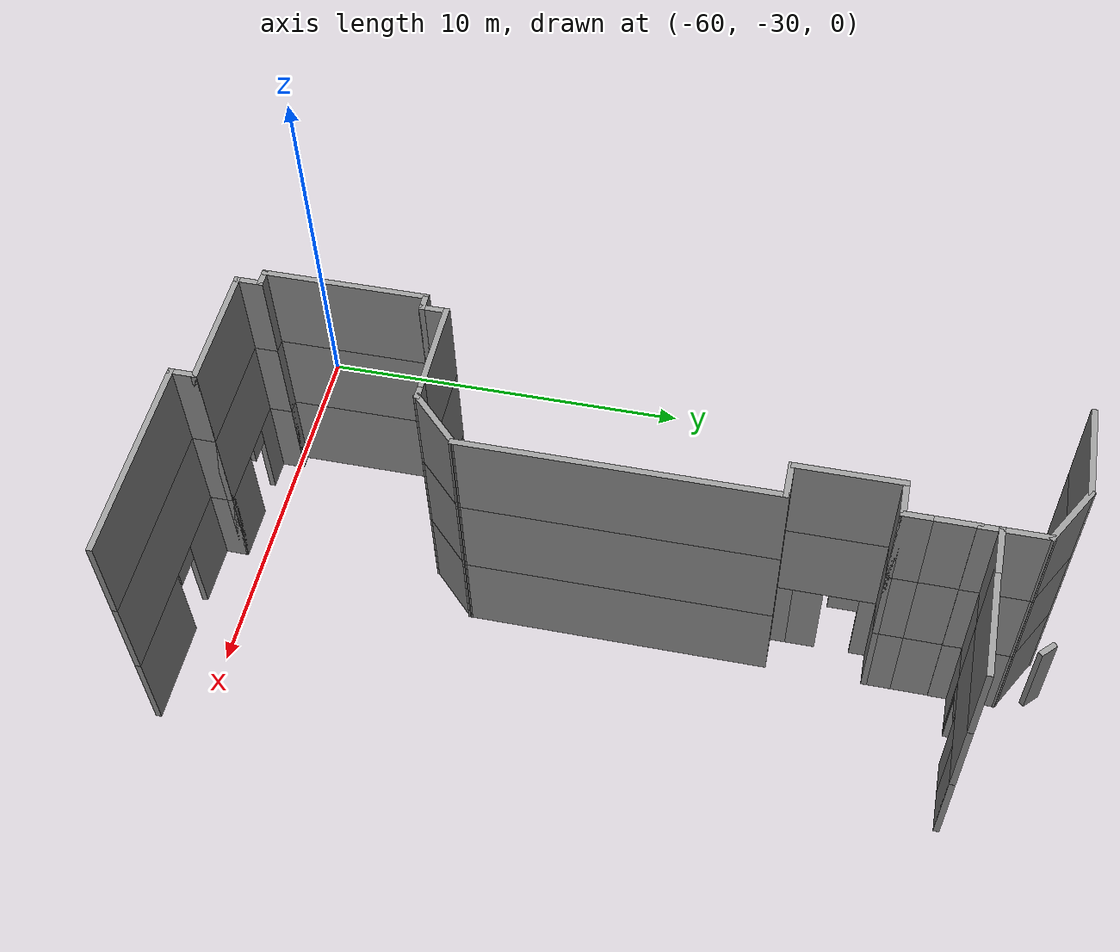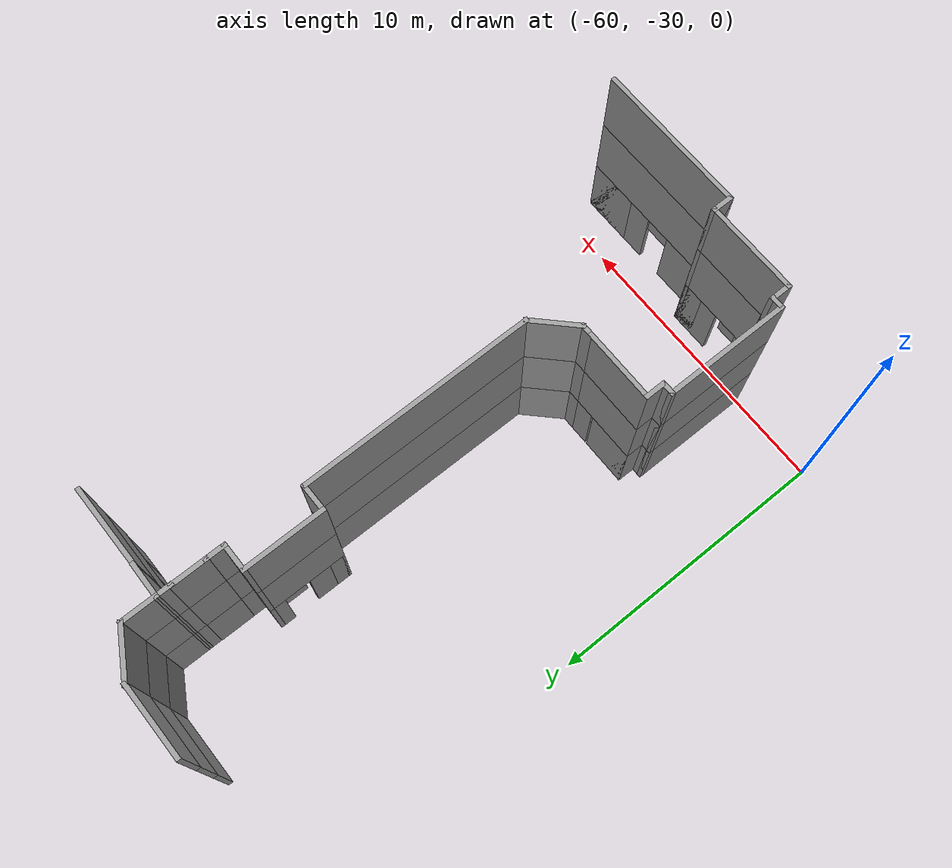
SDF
<sdf version="1.7">
 <model name="mapagazebo">
  <pose>-4.67869 9.01252 0 0 -0 0</pose>
  <link name="Wall_1429">
   <collision name="Wall_1429_Collision">
    <geometry><box><size>1.25 0.15 2.5</size></box></geometry>
    <pose>0 0 1.25 0 -0 0</pose>
   </collision>
   <visual name="Wall_1429_Visual">
    <pose>0 0 1.25 0 -0 0</pose>
    <geometry><box><size>1.25 0.15 2.5</size></box></geometry>
    <material>
     <script><uri>file://media/materials/scripts/gazebo.material</uri><name>Gazebo/Grey</name></script>
     <ambient>1 1 1 1</ambient>
    </material>
    <meta><layer>2</layer></meta>
   </visual>
   <pose>-47.8392 -20.1161 5 0 -0 -1.5708</pose>
  </link>
  <link name="Wall_1430">
   <collision name="Wall_1430_Collision">
    <geometry><box><size>1.22701 0.15 2.5</size></box></geometry>
    <pose>0 0 1.25 0 -0 0</pose>
   </collision>
   <visual name="Wall_1430_Visual">
    <pose>0 0 1.25 0 -0 0</pose>
    <geometry><box><size>1.22701 0.15 2.5</size></box></geometry>
    <material>
     <script><uri>file://media/materials/scripts/gazebo.material</uri><name>Gazebo/Grey</name></script>
     <ambient>1 1 1 1</ambient>
    </material>
    <meta><layer>2</layer></meta>
   </visual>
   <pose>-47.3008 -20.6724 5 0 -0 -0.011706</pose>
  </link>
  <link name="Wall_1431">
   <collision name="Wall_1431_Collision">
    <geometry><box><size>2.75 0.15 2.5</size></box></geometry>
    <pose>0 0 1.25 0 -0 0</pose>
   </collision>
   <visual name="Wall_1431_Visual">
    <pose>0 0 1.25 0 -0 0</pose>
    <geometry><box><size>2.75 0.15 2.5</size></box></geometry>
    <material>
     <script><uri>file://media/materials/scripts/gazebo.material</uri><name>Gazebo/Grey</name></script>
     <ambient>1 1 1 1</ambient>
    </material>
    <meta><layer>2</layer></meta>
   </visual>
   <pose>-45.4623 -20.6913 5 0 -0 0</pose>
  </link>
  <link name="Wall_1434">
   <collision name="Wall_1434_Collision">
    <geometry><box><size>0.626337 0.15 2.5</size></box></geometry>
    <pose>0 0 1.25 0 -0 0</pose>
   </collision>
   <visual name="Wall_1434_Visual">
    <pose>0 0 1.25 0 -0 0</pose>
    <geometry><box><size>0.626337 0.15 2.5</size></box></geometry>
    <material>
     <script><uri>file://media/materials/scripts/gazebo.material</uri><name>Gazebo/Grey</name></script>
     <ambient>1 1 1 1</ambient>
    </material>
    <meta><layer>2</layer></meta>
   </visual>
   <pose>-47.8374 -20.9043 5 0 -0 -1.563</pose>
  </link>
  <link name="Wall_1435">
   <collision name="Wall_1435_Collision">
    <geometry><box><size>1.25 0.15 2.5</size></box></geometry>
    <pose>0 0 1.25 0 -0 0</pose>
   </collision>
   <visual name="Wall_1435_Visual">
    <pose>0 0 1.25 0 -0 0</pose>
    <geometry><box><size>1.25 0.15 2.5</size></box></geometry>
    <material>
     <script><uri>file://media/materials/scripts/gazebo.material</uri><name>Gazebo/Grey</name></script>
     <ambient>1 1 1 1</ambient>
    </material>
    <meta><layer>2</layer></meta>
   </visual>
   <pose>-47.8481 -21.6924 5 0 -0 -1.5708</pose>
  </link>
  <link name="Wall_1436">
   <collision name="Wall_1436_Collision">
    <geometry><box><size>0.75 0.15 2.5</size></box></geometry>
    <pose>0 0 1.25 0 -0 0</pose>
   </collision>
   <visual name="Wall_1436_Visual">
    <pose>0 0 1.25 0 -0 0</pose>
    <geometry><box><size>0.75 0.15 2.5</size></box></geometry>
    <material>
     <script><uri>file://media/materials/scripts/gazebo.material</uri><name>Gazebo/Grey</name></script>
     <ambient>1 1 1 1</ambient>
    </material>
    <meta><layer>2</layer></meta>
   </visual>
   <pose>-47.8481 -22.5424 5 0 -0 -1.5708</pose>
  </link>
  <link name="Wall_1437">
   <collision name="Wall_1437_Collision">
    <geometry><box><size>1 0.15 2.5</size></box></geometry>
    <pose>0 0 1.25 0 -0 0</pose>
   </collision>
   <visual name="Wall_1437_Visual">
    <pose>0 0 1.25 0 -0 0</pose>
    <geometry><box><size>1 0.15 2.5</size></box></geometry>
    <material>
     <script><uri>file://media/materials/scripts/gazebo.material</uri><name>Gazebo/Grey</name></script>
     <ambient>1 1 1 1</ambient>
    </material>
    <meta><layer>2</layer></meta>
   </visual>
   <pose>-48.2731 -22.8424 5 0 -0 3.14159</pose>
  </link>
  <link name="Wall_1438">
   <collision name="Wall_1438_Collision">
    <geometry><box><size>2.75 0.15 2.5</size></box></geometry>
    <pose>0 0 1.25 0 -0 0</pose>
   </collision>
   <visual name="Wall_1438_Visual">
    <pose>0 0 1.25 0 -0 0</pose>
    <geometry><box><size>2.75 0.15 2.5</size></box></geometry>
    <material>
     <script><uri>file://media/materials/scripts/gazebo.material</uri><name>Gazebo/Grey</name></script>
     <ambient>1 1 1 1</ambient>
    </material>
    <meta><layer>2</layer></meta>
   </visual>
   <pose>-48.6981 -24.1424 5 0 -0 -1.5708</pose>
  </link>
  <link name="Wall_1439">
   <collision name="Wall_1439_Collision">
    <geometry><box><size>1 0.15 2.5</size></box></geometry>
    <pose>0 0 1.25 0 -0 0</pose>
   </collision>
   <visual name="Wall_1439_Visual">
    <pose>0 0 1.25 0 -0 0</pose>
    <geometry><box><size>1 0.15 2.5</size></box></geometry>
    <material>
     <script><uri>file://media/materials/scripts/gazebo.material</uri><name>Gazebo/Grey</name></script>
     <ambient>1 1 1 1</ambient>
    </material>
    <meta><layer>2</layer></meta>
   </visual>
   <pose>-48.2731 -25.4424 5 0 -0 0</pose>
  </link>
  <link name="Wall_1440">
   <collision name="Wall_1440_Collision">
    <geometry><box><size>7.8365 0.15 2.5</size></box></geometry>
    <pose>0 0 1.25 0 -0 0</pose>
   </collision>
   <visual name="Wall_1440_Visual">
    <pose>0 0 1.25 0 -0 0</pose>
    <geometry><box><size>7.8365 0.15 2.5</size></box></geometry>
    <material>
     <script><uri>file://media/materials/scripts/gazebo.material</uri><name>Gazebo/Grey</name></script>
     <ambient>1 1 1 1</ambient>
    </material>
    <meta><layer>2</layer></meta>
   </visual>
   <pose>-47.8481 -29.2857 5 0 -0 -1.5708</pose>
  </link>
  <link name="Wall_1441">
   <collision name="Wall_1441_Collision">
    <geometry><box><size>1.75 0.15 2.5</size></box></geometry>
    <pose>0 0 1.25 0 -0 0</pose>
   </collision>
   <visual name="Wall_1441_Visual">
    <pose>0 0 1.25 0 -0 0</pose>
    <geometry><box><size>1.75 0.15 2.5</size></box></geometry>
    <material>
     <script><uri>file://media/materials/scripts/gazebo.material</uri><name>Gazebo/Grey</name></script>
     <ambient>1 1 1 1</ambient>
    </material>
    <meta><layer>2</layer></meta>
   </visual>
   <pose>-48.4138 -33.6946 5 0 -0 -2.35619</pose>
  </link>
  <link name="Wall_1442">
   <collision name="Wall_1442_Collision">
    <geometry><box><size>0.5 0.15 2.5</size></box></geometry>
    <pose>0 0 1.25 0 -0 0</pose>
   </collision>
   <visual name="Wall_1442_Visual">
    <pose>0 0 1.25 0 -0 0</pose>
    <geometry><box><size>0.5 0.15 2.5</size></box></geometry>
    <material>
     <script><uri>file://media/materials/scripts/gazebo.material</uri><name>Gazebo/Grey</name></script>
     <ambient>1 1 1 1</ambient>
    </material>
    <meta><layer>2</layer></meta>
   </visual>
   <pose>-49.1545 -34.2603 5 0 -0 3.14159</pose>
  </link>
  <link name="Wall_1443">
   <collision name="Wall_1443_Collision">
    <geometry><box><size>2.5 0.15 2.5</size></box></geometry>
    <pose>0 0 1.25 0 -0 0</pose>
   </collision>
   <visual name="Wall_1443_Visual">
    <pose>0 0 1.25 0 -0 0</pose>
    <geometry><box><size>2.5 0.15 2.5</size></box></geometry>
    <material>
     <script><uri>file://media/materials/scripts/gazebo.material</uri><name>Gazebo/Grey</name></script>
     <ambient>1 1 1 1</ambient>
    </material>
    <meta><layer>2</layer></meta>
   </visual>
   <pose>-50.5045 -34.2603 5 0 -0 3.14159</pose>
  </link>
  <link name="Wall_1444">
   <collision name="Wall_1444_Collision">
    <geometry><box><size>0.75 0.15 2.5</size></box></geometry>
    <pose>0 0 1.25 0 -0 0</pose>
   </collision>
   <visual name="Wall_1444_Visual">
    <pose>0 0 1.25 0 -0 0</pose>
    <geometry><box><size>0.75 0.15 2.5</size></box></geometry>
    <material>
     <script><uri>file://media/materials/scripts/gazebo.material</uri><name>Gazebo/Grey</name></script>
     <ambient>1 1 1 1</ambient>
    </material>
    <meta><layer>2</layer></meta>
   </visual>
   <pose>-51.6795 -34.5603 5 0 -0 -1.5708</pose>
  </link>
  <link name="Wall_1445">
   <collision name="Wall_1445_Collision">
    <geometry><box><size>0.5 0.15 2.5</size></box></geometry>
    <pose>0 0 1.25 0 -0 0</pose>
   </collision>
   <visual name="Wall_1445_Visual">
    <pose>0 0 1.25 0 -0 0</pose>
    <geometry><box><size>0.5 0.15 2.5</size></box></geometry>
    <material>
     <script><uri>file://media/materials/scripts/gazebo.material</uri><name>Gazebo/Grey</name></script>
     <ambient>1 1 1 1</ambient>
    </material>
    <meta><layer>2</layer></meta>
   </visual>
   <pose>-51.8545 -34.8603 5 0 -0 3.14159</pose>
  </link>
  <link name="Wall_1446">
   <collision name="Wall_1446_Collision">
    <geometry><box><size>4.25 0.15 2.5</size></box></geometry>
    <pose>0 0 1.25 0 -0 0</pose>
   </collision>
   <visual name="Wall_1446_Visual">
    <pose>0 0 1.25 0 -0 0</pose>
    <geometry><box><size>4.25 0.15 2.5</size></box></geometry>
    <material>
     <script><uri>file://media/materials/scripts/gazebo.material</uri><name>Gazebo/Grey</name></script>
     <ambient>1 1 1 1</ambient>
    </material>
    <meta><layer>2</layer></meta>
   </visual>
   <pose>-52.0295 -36.9103 5 0 -0 -1.5708</pose>
  </link>
  <link name="Wall_1447">
   <collision name="Wall_1447_Collision">
    <geometry><box><size>0.5 0.15 2.5</size></box></geometry>
    <pose>0 0 1.25 0 -0 0</pose>
   </collision>
   <visual name="Wall_1447_Visual">
    <pose>0 0 1.25 0 -0 0</pose>
    <geometry><box><size>0.5 0.15 2.5</size></box></geometry>
    <material>
     <script><uri>file://media/materials/scripts/gazebo.material</uri><name>Gazebo/Grey</name></script>
     <ambient>1 1 1 1</ambient>
    </material>
    <meta><layer>2</layer></meta>
   </visual>
   <pose>-51.8545 -38.9603 5 0 -0 0</pose>
  </link>
  <link name="Wall_1448">
   <collision name="Wall_1448_Collision">
    <geometry><box><size>0.75 0.15 2.5</size></box></geometry>
    <pose>0 0 1.25 0 -0 0</pose>
   </collision>
   <visual name="Wall_1448_Visual">
    <pose>0 0 1.25 0 -0 0</pose>
    <geometry><box><size>0.75 0.15 2.5</size></box></geometry>
    <material>
     <script><uri>file://media/materials/scripts/gazebo.material</uri><name>Gazebo/Grey</name></script>
     <ambient>1 1 1 1</ambient>
    </material>
    <meta><layer>2</layer></meta>
   </visual>
   <pose>-51.6795 -39.2603 5 0 -0 -1.5708</pose>
  </link>
  <link name="Wall_1449">
   <collision name="Wall_1449_Collision">
    <geometry><box><size>3.25 0.15 2.5</size></box></geometry>
    <pose>0 0 1.25 0 -0 0</pose>
   </collision>
   <visual name="Wall_1449_Visual">
    <pose>0 0 1.25 0 -0 0</pose>
    <geometry><box><size>3.25 0.15 2.5</size></box></geometry>
    <material>
     <script><uri>file://media/materials/scripts/gazebo.material</uri><name>Gazebo/Grey</name></script>
     <ambient>1 1 1 1</ambient>
    </material>
    <meta><layer>2</layer></meta>
   </visual>
   <pose>-50.1295 -39.5603 5 0 -0 0</pose>
  </link>
  <link name="Wall_1450">
   <collision name="Wall_1450_Collision">
    <geometry><box><size>0.75 0.15 2.5</size></box></geometry>
    <pose>0 0 1.25 0 -0 0</pose>
   </collision>
   <visual name="Wall_1450_Visual">
    <pose>0 0 1.25 0 -0 0</pose>
    <geometry><box><size>0.75 0.15 2.5</size></box></geometry>
    <material>
     <script><uri>file://media/materials/scripts/gazebo.material</uri><name>Gazebo/Grey</name></script>
     <ambient>1 1 1 1</ambient>
    </material>
    <meta><layer>2</layer></meta>
   </visual>
   <pose>-48.5795 -39.8603 5 0 -0 -1.5708</pose>
  </link>
  <link name="Wall_1451">
   <collision name="Wall_1451_Collision">
    <geometry><box><size>5.25 0.15 2.5</size></box></geometry>
    <pose>0 0 1.25 0 -0 0</pose>
   </collision>
   <visual name="Wall_1451_Visual">
    <pose>0 0 1.25 0 -0 0</pose>
    <geometry><box><size>5.25 0.15 2.5</size></box></geometry>
    <material>
     <script><uri>file://media/materials/scripts/gazebo.material</uri><name>Gazebo/Grey</name></script>
     <ambient>1 1 1 1</ambient>
    </material>
    <meta><layer>2</layer></meta>
   </visual>
   <pose>-46.0295 -40.1603 5 0 -0 0</pose>
  </link>
  <link name="Wall_1460">
   <collision name="Wall_1460_Collision">
    <geometry><box><size>1.75 0.15 2.5</size></box></geometry>
    <pose>0 0 1.25 0 -0 0</pose>
   </collision>
   <visual name="Wall_1460_Visual">
    <pose>0 0 1.25 0 -0 0</pose>
    <geometry><box><size>1.75 0.15 2.5</size></box></geometry>
    <material>
     <script><uri>file://media/materials/scripts/gazebo.material</uri><name>Gazebo/Grey</name></script>
     <ambient>1 1 1 1</ambient>
    </material>
    <meta><layer>2</layer></meta>
   </visual>
   <pose>-48.5321 -19.1661 5 0 -0 2.61799</pose>
  </link>
  <link name="Wall_1461">
   <collision name="Wall_1461_Collision">
    <geometry><box><size>2.5 0.15 2.5</size></box></geometry>
    <pose>0 0 1.25 0 -0 0</pose>
   </collision>
   <visual name="Wall_1461_Visual">
    <pose>0 0 1.25 0 -0 0</pose>
    <geometry><box><size>2.5 0.15 2.5</size></box></geometry>
    <material>
     <script><uri>file://media/materials/scripts/gazebo.material</uri><name>Gazebo/Grey</name></script>
     <ambient>1 1 1 1</ambient>
    </material>
    <meta><layer>2</layer></meta>
   </visual>
   <pose>-50.3999 -18.7661 5 0 -0 3.14159</pose>
  </link>
  <link name="Wall_2167">
   <collision name="Wall_2167_Collision">
    <geometry><box><size>0.5 0.15 2.5</size></box></geometry>
    <pose>0 0 1.25 0 -0 0</pose>
   </collision>
   <visual name="Wall_2167_Visual">
    <pose>0 0 1.25 0 -0 0</pose>
    <geometry><box><size>0.5 0.15 2.5</size></box></geometry>
    <material>
     <script><uri>file://media/materials/scripts/gazebo.material</uri><name>Gazebo/Grey</name></script>
     <ambient>1 1 1 1</ambient>
    </material>
    <meta><layer>0</layer></meta>
   </visual>
   <pose>-48.1469 -18.689 0 0 -0 2.35619</pose>
  </link>
  <link name="Wall_42">
   <collision name="Wall_42_Collision">
    <geometry><box><size>1.25 0.15 2.5</size></box></geometry>
    <pose>0 0 1.25 0 -0 0</pose>
   </collision>
   <visual name="Wall_42_Visual">
    <pose>0 0 1.25 0 -0 0</pose>
    <geometry><box><size>1.25 0.15 2.5</size></box></geometry>
    <material>
     <script><uri>file://media/materials/scripts/gazebo.material</uri><name>Gazebo/Grey</name></script>
     <ambient>1 1 1 1</ambient>
    </material>
    <meta><layer>0</layer></meta>
   </visual>
   <pose>-47.8392 -20.1161 0 0 -0 -1.5708</pose>
  </link>
  <link name="Wall_43">
   <collision name="Wall_43_Collision">
    <geometry><box><size>1.22701 0.15 2.5</size></box></geometry>
    <pose>0 0 1.25 0 -0 0</pose>
   </collision>
   <visual name="Wall_43_Visual">
    <pose>0 0 1.25 0 -0 0</pose>
    <geometry><box><size>1.22701 0.15 2.5</size></box></geometry>
    <material>
     <script><uri>file://media/materials/scripts/gazebo.material</uri><name>Gazebo/Grey</name></script>
     <ambient>1 1 1 1</ambient>
    </material>
    <meta><layer>0</layer></meta>
   </visual>
   <pose>-47.3008 -20.6724 0 0 -0 -0.011706</pose>
  </link>
  <link name="Wall_44">
   <pose>-45.4623 -20.6913 0 0 -0 0</pose>
   <visual name="Wall_44_Visual_0">
    <pose>-1.34968 0 1.25 0 -0 0</pose>
    <geometry><box><size>0.050641 0.15 2.5</size></box></geometry>
    <material>
     <script><uri>file://media/materials/scripts/gazebo.material</uri><name>Gazebo/Grey</name></script>
     <ambient>1 1 1 1</ambient>
    </material>
    <meta><layer>0</layer></meta>
   </visual>
   <collision name="Wall_44_Collision_0">
    <geometry><box><size>0.050641 0.15 2.5</size></box></geometry>
    <pose>-1.34968 0 1.25 0 -0 0</pose>
   </collision>
   <visual name="Wall_44_Visual_1">
    <pose>0.47532 0 1.25 0 -0 0</pose>
    <geometry><box><size>1.79936 0.15 2.5</size></box></geometry>
    <material>
     <script><uri>file://media/materials/scripts/gazebo.material</uri><name>Gazebo/Grey</name></script>
     <ambient>1 1 1 1</ambient>
    </material>
    <meta><layer>0</layer></meta>
   </visual>
   <collision name="Wall_44_Collision_1">
    <geometry><box><size>1.79936 0.15 2.5</size></box></geometry>
    <pose>0.47532 0 1.25 0 -0 0</pose>
   </collision>
   <visual name="Wall_44_Visual_2">
    <pose>0.86922 0 1.25 0 -0 0</pose>
    <geometry><box><size>1.01156 0.15 2.5</size></box></geometry>
    <material>
     <script><uri>file://media/materials/scripts/gazebo.material</uri><name>Gazebo/Grey</name></script>
     <ambient>1 1 1 1</ambient>
    </material>
    <meta><layer>0</layer></meta>
   </visual>
   <collision name="Wall_44_Collision_2">
    <geometry><box><size>1.01156 0.15 2.5</size></box></geometry>
    <pose>0.86922 0 1.25 0 -0 0</pose>
   </collision>
   <visual name="Wall_44_Visual_3">
    <pose>-0.930459 0 2.25 0 -0 0</pose>
    <geometry><box><size>0.7878 0.15 0.5</size></box></geometry>
    <material>
     <script><uri>file://media/materials/scripts/gazebo.material</uri><name>Gazebo/Grey</name></script>
     <ambient>1 1 1 1</ambient>
    </material>
    <meta><layer>0</layer></meta>
   </visual>
   <collision name="Wall_44_Collision_3">
    <geometry><box><size>0.7878 0.15 0.5</size></box></geometry>
    <pose>-0.930459 0 2.25 0 -0 0</pose>
   </collision>
  </link>
  <link name="Wall_50">
   <collision name="Wall_50_Collision">
    <geometry><box><size>0.626405 0.15 2.5</size></box></geometry>
    <pose>0 0 1.25 0 -0 0</pose>
   </collision>
   <visual name="Wall_50_Visual">
    <pose>0 0 1.25 0 -0 0</pose>
    <geometry><box><size>0.626405 0.15 2.5</size></box></geometry>
    <material>
     <script><uri>file://media/materials/scripts/gazebo.material</uri><name>Gazebo/Grey</name></script>
     <ambient>1 1 1 1</ambient>
    </material>
    <meta><layer>0</layer></meta>
   </visual>
   <pose>-47.8374 -20.9043 0 0 -0 -1.563</pose>
  </link>
  <link name="Wall_51">
   <collision name="Wall_51_Collision">
    <geometry><box><size>1.25 0.15 2.5</size></box></geometry>
    <pose>0 0 1.25 0 -0 0</pose>
   </collision>
   <visual name="Wall_51_Visual">
    <pose>0 0 1.25 0 -0 0</pose>
    <geometry><box><size>1.25 0.15 2.5</size></box></geometry>
    <material>
     <script><uri>file://media/materials/scripts/gazebo.material</uri><name>Gazebo/Grey</name></script>
     <ambient>1 1 1 1</ambient>
    </material>
    <meta><layer>0</layer></meta>
   </visual>
   <pose>-47.8481 -21.6924 0 0 -0 -1.5708</pose>
  </link>
  <link name="Wall_56">
   <collision name="Wall_56_Collision">
    <geometry><box><size>0.75 0.15 2.5</size></box></geometry>
    <pose>0 0 1.25 0 -0 0</pose>
   </collision>
   <visual name="Wall_56_Visual">
    <pose>0 0 1.25 0 -0 0</pose>
    <geometry><box><size>0.75 0.15 2.5</size></box></geometry>
    <material>
     <script><uri>file://media/materials/scripts/gazebo.material</uri><name>Gazebo/Grey</name></script>
     <ambient>1 1 1 1</ambient>
    </material>
    <meta><layer>0</layer></meta>
   </visual>
   <pose>-47.8481 -22.5424 0 0 -0 -1.5708</pose>
  </link>
  <link name="Wall_57">
   <collision name="Wall_57_Collision">
    <geometry><box><size>1 0.15 2.5</size></box></geometry>
    <pose>0 0 1.25 0 -0 0</pose>
   </collision>
   <visual name="Wall_57_Visual">
    <pose>0 0 1.25 0 -0 0</pose>
    <geometry><box><size>1 0.15 2.5</size></box></geometry>
    <material>
     <script><uri>file://media/materials/scripts/gazebo.material</uri><name>Gazebo/Grey</name></script>
     <ambient>1 1 1 1</ambient>
    </material>
    <meta><layer>0</layer></meta>
   </visual>
   <pose>-48.2731 -22.8424 0 0 -0 3.14159</pose>
  </link>
  <link name="Wall_58">
   <pose>-48.6981 -24.1424 0 0 -0 -1.5708</pose>
   <visual name="Wall_58_Visual_0">
    <pose>-1.09567 0 1.25 0 -0 0</pose>
    <geometry><box><size>0.558657 0.15 2.5</size></box></geometry>
    <material>
     <script><uri>file://media/materials/scripts/gazebo.material</uri><name>Gazebo/Grey</name></script>
     <ambient>1 1 1 1</ambient>
    </material>
    <meta><layer>0</layer></meta>
   </visual>
   <collision name="Wall_58_Collision_0">
    <geometry><box><size>0.558657 0.15 2.5</size></box></geometry>
    <pose>-1.09567 0 1.25 0 -0 0</pose>
   </collision>
   <visual name="Wall_58_Visual_1">
    <pose>0.729328 0 1.25 0 -0 0</pose>
    <geometry><box><size>1.29134 0.15 2.5</size></box></geometry>
    <material>
     <script><uri>file://media/materials/scripts/gazebo.material</uri><name>Gazebo/Grey</name></script>
     <ambient>1 1 1 1</ambient>
    </material>
    <meta><layer>0</layer></meta>
   </visual>
   <collision name="Wall_58_Collision_1">
    <geometry><box><size>1.29134 0.15 2.5</size></box></geometry>
    <pose>0.729328 0 1.25 0 -0 0</pose>
   </collision>
   <visual name="Wall_58_Visual_2">
    <pose>1.10844 0 1.25 0 -0 0</pose>
    <geometry><box><size>0.533118 0.15 2.5</size></box></geometry>
    <material>
     <script><uri>file://media/materials/scripts/gazebo.material</uri><name>Gazebo/Grey</name></script>
     <ambient>1 1 1 1</ambient>
    </material>
    <meta><layer>0</layer></meta>
   </visual>
   <collision name="Wall_58_Collision_2">
    <geometry><box><size>0.533118 0.15 2.5</size></box></geometry>
    <pose>1.10844 0 1.25 0 -0 0</pose>
   </collision>
   <visual name="Wall_58_Visual_3">
    <pose>-0.437231 0 2.25 0 -0 0</pose>
    <geometry><box><size>0.758225 0.15 0.5</size></box></geometry>
    <material>
     <script><uri>file://media/materials/scripts/gazebo.material</uri><name>Gazebo/Grey</name></script>
     <ambient>1 1 1 1</ambient>
    </material>
    <meta><layer>0</layer></meta>
   </visual>
   <collision name="Wall_58_Collision_3">
    <geometry><box><size>0.758225 0.15 0.5</size></box></geometry>
    <pose>-0.437231 0 2.25 0 -0 0</pose>
   </collision>
  </link>
  <link name="Wall_60">
   <collision name="Wall_60_Collision">
    <geometry><box><size>1 0.15 2.5</size></box></geometry>
    <pose>0 0 1.25 0 -0 0</pose>
   </collision>
   <visual name="Wall_60_Visual">
    <pose>0 0 1.25 0 -0 0</pose>
    <geometry><box><size>1 0.15 2.5</size></box></geometry>
    <material>
     <script><uri>file://media/materials/scripts/gazebo.material</uri><name>Gazebo/Grey</name></script>
     <ambient>1 1 1 1</ambient>
    </material>
    <meta><layer>0</layer></meta>
   </visual>
   <pose>-48.2731 -25.4424 0 0 -0 0</pose>
  </link>
  <link name="Wall_61">
   <collision name="Wall_61_Collision">
    <geometry><box><size>7.83651 0.15 2.5</size></box></geometry>
    <pose>0 0 1.25 0 -0 0</pose>
   </collision>
   <visual name="Wall_61_Visual">
    <pose>0 0 1.25 0 -0 0</pose>
    <geometry><box><size>7.83651 0.15 2.5</size></box></geometry>
    <material>
     <script><uri>file://media/materials/scripts/gazebo.material</uri><name>Gazebo/Grey</name></script>
     <ambient>1 1 1 1</ambient>
    </material>
    <meta><layer>0</layer></meta>
   </visual>
   <pose>-47.8481 -29.2857 0 0 -0 -1.5708</pose>
  </link>
  <link name="Wall_64">
   <collision name="Wall_64_Collision">
    <geometry><box><size>1.75 0.15 2.5</size></box></geometry>
    <pose>0 0 1.25 0 -0 0</pose>
   </collision>
   <visual name="Wall_64_Visual">
    <pose>0 0 1.25 0 -0 0</pose>
    <geometry><box><size>1.75 0.15 2.5</size></box></geometry>
    <material>
     <script><uri>file://media/materials/scripts/gazebo.material</uri><name>Gazebo/Grey</name></script>
     <ambient>1 1 1 1</ambient>
    </material>
    <meta><layer>0</layer></meta>
   </visual>
   <pose>-48.4138 -33.6946 0 0 -0 -2.35619</pose>
  </link>
  <link name="Wall_65">
   <collision name="Wall_65_Collision">
    <geometry><box><size>0.5 0.15 2.5</size></box></geometry>
    <pose>0 0 1.25 0 -0 0</pose>
   </collision>
   <visual name="Wall_65_Visual">
    <pose>0 0 1.25 0 -0 0</pose>
    <geometry><box><size>0.5 0.15 2.5</size></box></geometry>
    <material>
     <script><uri>file://media/materials/scripts/gazebo.material</uri><name>Gazebo/Grey</name></script>
     <ambient>1 1 1 1</ambient>
    </material>
    <meta><layer>0</layer></meta>
   </visual>
   <pose>-49.1545 -34.2603 0 0 -0 3.14159</pose>
  </link>
  <link name="Wall_66">
   <pose>-50.5045 -34.2603 0 0 -0 3.14159</pose>
   <visual name="Wall_66_Visual_0">
    <pose>-0.852335 0 1.25 0 -0 0</pose>
    <geometry><box><size>0.795331 0.15 2.5</size></box></geometry>
    <material>
     <script><uri>file://media/materials/scripts/gazebo.material</uri><name>Gazebo/Grey</name></script>
     <ambient>1 1 1 1</ambient>
    </material>
    <meta><layer>0</layer></meta>
   </visual>
   <collision name="Wall_66_Collision_0">
    <geometry><box><size>0.795331 0.15 2.5</size></box></geometry>
    <pose>-0.852335 0 1.25 0 -0 0</pose>
   </collision>
   <visual name="Wall_66_Visual_1">
    <pose>0.428455 0 1.25 0 -0 0</pose>
    <geometry><box><size>1.64309 0.15 2.5</size></box></geometry>
    <material>
     <script><uri>file://media/materials/scripts/gazebo.material</uri><name>Gazebo/Grey</name></script>
     <ambient>1 1 1 1</ambient>
    </material>
    <meta><layer>0</layer></meta>
   </visual>
   <collision name="Wall_66_Collision_1">
    <geometry><box><size>1.64309 0.15 2.5</size></box></geometry>
    <pose>0.428455 0 1.25 0 -0 0</pose>
   </collision>
   <visual name="Wall_66_Visual_2">
    <pose>0.847665 0 1.25 0 -0 0</pose>
    <geometry><box><size>0.804669 0.15 2.5</size></box></geometry>
    <material>
     <script><uri>file://media/materials/scripts/gazebo.material</uri><name>Gazebo/Grey</name></script>
     <ambient>1 1 1 1</ambient>
    </material>
    <meta><layer>0</layer></meta>
   </visual>
   <collision name="Wall_66_Collision_2">
    <geometry><box><size>0.804669 0.15 2.5</size></box></geometry>
    <pose>0.847665 0 1.25 0 -0 0</pose>
   </collision>
   <visual name="Wall_66_Visual_3">
    <pose>-0.42388 0 2.25 0 -0 0</pose>
    <geometry><box><size>0.061579 0.15 0.5</size></box></geometry>
    <material>
     <script><uri>file://media/materials/scripts/gazebo.material</uri><name>Gazebo/Grey</name></script>
     <ambient>1 1 1 1</ambient>
    </material>
    <meta><layer>0</layer></meta>
   </visual>
   <collision name="Wall_66_Collision_3">
    <geometry><box><size>0.061579 0.15 0.5</size></box></geometry>
    <pose>-0.42388 0 2.25 0 -0 0</pose>
   </collision>
  </link>
  <link name="Wall_67">
   <collision name="Wall_67_Collision">
    <geometry><box><size>0.75 0.15 2.5</size></box></geometry>
    <pose>0 0 1.25 0 -0 0</pose>
   </collision>
   <visual name="Wall_67_Visual">
    <pose>0 0 1.25 0 -0 0</pose>
    <geometry><box><size>0.75 0.15 2.5</size></box></geometry>
    <material>
     <script><uri>file://media/materials/scripts/gazebo.material</uri><name>Gazebo/Grey</name></script>
     <ambient>1 1 1 1</ambient>
    </material>
    <meta><layer>0</layer></meta>
   </visual>
   <pose>-51.6795 -34.5603 0 0 -0 -1.5708</pose>
  </link>
  <link name="Wall_69">
   <collision name="Wall_69_Collision">
    <geometry><box><size>0.5 0.15 2.5</size></box></geometry>
    <pose>0 0 1.25 0 -0 0</pose>
   </collision>
   <visual name="Wall_69_Visual">
    <pose>0 0 1.25 0 -0 0</pose>
    <geometry><box><size>0.5 0.15 2.5</size></box></geometry>
    <material>
     <script><uri>file://media/materials/scripts/gazebo.material</uri><name>Gazebo/Grey</name></script>
     <ambient>1 1 1 1</ambient>
    </material>
    <meta><layer>0</layer></meta>
   </visual>
   <pose>-51.8545 -34.8603 0 0 -0 3.14159</pose>
  </link>
  <link name="Wall_70">
   <collision name="Wall_70_Collision">
    <geometry><box><size>4.25 0.15 2.5</size></box></geometry>
    <pose>0 0 1.25 0 -0 0</pose>
   </collision>
   <visual name="Wall_70_Visual">
    <pose>0 0 1.25 0 -0 0</pose>
    <geometry><box><size>4.25 0.15 2.5</size></box></geometry>
    <material>
     <script><uri>file://media/materials/scripts/gazebo.material</uri><name>Gazebo/Grey</name></script>
     <ambient>1 1 1 1</ambient>
    </material>
    <meta><layer>0</layer></meta>
   </visual>
   <pose>-52.0295 -36.9103 0 0 -0 -1.5708</pose>
  </link>
  <link name="Wall_71">
   <collision name="Wall_71_Collision">
    <geometry><box><size>0.5 0.15 2.5</size></box></geometry>
    <pose>0 0 1.25 0 -0 0</pose>
   </collision>
   <visual name="Wall_71_Visual">
    <pose>0 0 1.25 0 -0 0</pose>
    <geometry><box><size>0.5 0.15 2.5</size></box></geometry>
    <material>
     <script><uri>file://media/materials/scripts/gazebo.material</uri><name>Gazebo/Grey</name></script>
     <ambient>1 1 1 1</ambient>
    </material>
    <meta><layer>0</layer></meta>
   </visual>
   <pose>-51.8545 -38.9603 0 0 -0 0</pose>
  </link>
  <link name="Wall_72">
   <collision name="Wall_72_Collision">
    <geometry><box><size>0.75 0.15 2.5</size></box></geometry>
    <pose>0 0 1.25 0 -0 0</pose>
   </collision>
   <visual name="Wall_72_Visual">
    <pose>0 0 1.25 0 -0 0</pose>
    <geometry><box><size>0.75 0.15 2.5</size></box></geometry>
    <material>
     <script><uri>file://media/materials/scripts/gazebo.material</uri><name>Gazebo/Grey</name></script>
     <ambient>1 1 1 1</ambient>
    </material>
    <meta><layer>0</layer></meta>
   </visual>
   <pose>-51.6795 -39.2603 0 0 -0 -1.5708</pose>
  </link>
  <link name="Wall_74">
   <pose>-50.1295 -39.5603 0 0 -0 0</pose>
   <visual name="Wall_74_Visual_0">
    <pose>-1.17236 0 1.25 0 -0 0</pose>
    <geometry><box><size>0.905278 0.15 2.5</size></box></geometry>
    <material>
     <script><uri>file://media/materials/scripts/gazebo.material</uri><name>Gazebo/Grey</name></script>
     <ambient>1 1 1 1</ambient>
    </material>
    <meta><layer>0</layer></meta>
   </visual>
   <collision name="Wall_74_Collision_0">
    <geometry><box><size>0.905278 0.15 2.5</size></box></geometry>
    <pose>-1.17236 0 1.25 0 -0 0</pose>
   </collision>
   <visual name="Wall_74_Visual_1">
    <pose>0.902639 0 1.25 0 -0 0</pose>
    <geometry><box><size>1.44472 0.15 2.5</size></box></geometry>
    <material>
     <script><uri>file://media/materials/scripts/gazebo.material</uri><name>Gazebo/Grey</name></script>
     <ambient>1 1 1 1</ambient>
    </material>
    <meta><layer>0</layer></meta>
   </visual>
   <collision name="Wall_74_Collision_1">
    <geometry><box><size>1.44472 0.15 2.5</size></box></geometry>
    <pose>0.902639 0 1.25 0 -0 0</pose>
   </collision>
   <visual name="Wall_74_Visual_2">
    <pose>1.23801 0 1.25 0 -0 0</pose>
    <geometry><box><size>0.773984 0.15 2.5</size></box></geometry>
    <material>
     <script><uri>file://media/materials/scripts/gazebo.material</uri><name>Gazebo/Grey</name></script>
     <ambient>1 1 1 1</ambient>
    </material>
    <meta><layer>0</layer></meta>
   </visual>
   <collision name="Wall_74_Collision_2">
    <geometry><box><size>0.773984 0.15 2.5</size></box></geometry>
    <pose>1.23801 0 1.25 0 -0 0</pose>
   </collision>
   <visual name="Wall_74_Visual_3">
    <pose>-0.384353 0 2.25 0 -0 0</pose>
    <geometry><box><size>0.670738 0.15 0.5</size></box></geometry>
    <material>
     <script><uri>file://media/materials/scripts/gazebo.material</uri><name>Gazebo/Grey</name></script>
     <ambient>1 1 1 1</ambient>
    </material>
    <meta><layer>0</layer></meta>
   </visual>
   <collision name="Wall_74_Collision_3">
    <geometry><box><size>0.670738 0.15 0.5</size></box></geometry>
    <pose>-0.384353 0 2.25 0 -0 0</pose>
   </collision>
  </link>
  <link name="Wall_75">
   <collision name="Wall_75_Collision">
    <geometry><box><size>0.75 0.15 2.5</size></box></geometry>
    <pose>0 0 1.25 0 -0 0</pose>
   </collision>
   <visual name="Wall_75_Visual">
    <pose>0 0 1.25 0 -0 0</pose>
    <geometry><box><size>0.75 0.15 2.5</size></box></geometry>
    <material>
     <script><uri>file://media/materials/scripts/gazebo.material</uri><name>Gazebo/Grey</name></script>
     <ambient>1 1 1 1</ambient>
    </material>
    <meta><layer>0</layer></meta>
   </visual>
   <pose>-48.5795 -39.8603 0 0 -0 -1.5708</pose>
  </link>
  <link name="Wall_76">
   <pose>-46.0295 -40.1603 0 0 -0 0</pose>
   <visual name="Wall_76_Visual_0">
    <pose>-1.76171 0 1.25 0 -0 0</pose>
    <geometry><box><size>1.72658 0.15 2.5</size></box></geometry>
    <material>
     <script><uri>file://media/materials/scripts/gazebo.material</uri><name>Gazebo/Grey</name></script>
     <ambient>1 1 1 1</ambient>
    </material>
    <meta><layer>0</layer></meta>
   </visual>
   <collision name="Wall_76_Collision_0">
    <geometry><box><size>1.72658 0.15 2.5</size></box></geometry>
    <pose>-1.76171 0 1.25 0 -0 0</pose>
   </collision>
   <visual name="Wall_76_Visual_1">
    <pose>1.31329 0 1.25 0 -0 0</pose>
    <geometry><box><size>2.62342 0.15 2.5</size></box></geometry>
    <material>
     <script><uri>file://media/materials/scripts/gazebo.material</uri><name>Gazebo/Grey</name></script>
     <ambient>1 1 1 1</ambient>
    </material>
    <meta><layer>0</layer></meta>
   </visual>
   <collision name="Wall_76_Collision_1">
    <geometry><box><size>2.62342 0.15 2.5</size></box></geometry>
    <pose>1.31329 0 1.25 0 -0 0</pose>
   </collision>
   <visual name="Wall_76_Visual_2">
    <pose>1.73753 0 1.25 0 -0 0</pose>
    <geometry><box><size>1.77493 0.15 2.5</size></box></geometry>
    <material>
     <script><uri>file://media/materials/scripts/gazebo.material</uri><name>Gazebo/Grey</name></script>
     <ambient>1 1 1 1</ambient>
    </material>
    <meta><layer>0</layer></meta>
   </visual>
   <collision name="Wall_76_Collision_2">
    <geometry><box><size>1.77493 0.15 2.5</size></box></geometry>
    <pose>1.73753 0 1.25 0 -0 0</pose>
   </collision>
   <visual name="Wall_76_Visual_3">
    <pose>-0.474176 0 2.25 0 -0 0</pose>
    <geometry><box><size>0.848484 0.15 0.5</size></box></geometry>
    <material>
     <script><uri>file://media/materials/scripts/gazebo.material</uri><name>Gazebo/Grey</name></script>
     <ambient>1 1 1 1</ambient>
    </material>
    <meta><layer>0</layer></meta>
   </visual>
   <collision name="Wall_76_Collision_3">
    <geometry><box><size>0.848484 0.15 0.5</size></box></geometry>
    <pose>-0.474176 0 2.25 0 -0 0</pose>
   </collision>
  </link>
  <link name="Wall_805">
   <collision name="Wall_805_Collision">
    <geometry><box><size>1.25 0.15 2.5</size></box></geometry>
    <pose>0 0 1.25 0 -0 0</pose>
   </collision>
   <visual name="Wall_805_Visual">
    <pose>0 0 1.25 0 -0 0</pose>
    <geometry><box><size>1.25 0.15 2.5</size></box></geometry>
    <material>
     <script><uri>file://media/materials/scripts/gazebo.material</uri><name>Gazebo/Grey</name></script>
     <ambient>1 1 1 1</ambient>
    </material>
    <meta><layer>1</layer></meta>
   </visual>
   <pose>-47.8392 -20.1161 2.5 0 -0 -1.5708</pose>
  </link>
  <link name="Wall_806">
   <collision name="Wall_806_Collision">
    <geometry><box><size>1.22701 0.15 2.5</size></box></geometry>
    <pose>0 0 1.25 0 -0 0</pose>
   </collision>
   <visual name="Wall_806_Visual">
    <pose>0 0 1.25 0 -0 0</pose>
    <geometry><box><size>1.22701 0.15 2.5</size></box></geometry>
    <material>
     <script><uri>file://media/materials/scripts/gazebo.material</uri><name>Gazebo/Grey</name></script>
     <ambient>1 1 1 1</ambient>
    </material>
    <meta><layer>1</layer></meta>
   </visual>
   <pose>-47.3008 -20.6724 2.5 0 -0 -0.011706</pose>
  </link>
  <link name="Wall_807">
   <collision name="Wall_807_Collision">
    <geometry><box><size>2.75 0.15 2.5</size></box></geometry>
    <pose>0 0 1.25 0 -0 0</pose>
   </collision>
   <visual name="Wall_807_Visual">
    <pose>0 0 1.25 0 -0 0</pose>
    <geometry><box><size>2.75 0.15 2.5</size></box></geometry>
    <material>
     <script><uri>file://media/materials/scripts/gazebo.material</uri><name>Gazebo/Grey</name></script>
     <ambient>1 1 1 1</ambient>
    </material>
    <meta><layer>1</layer></meta>
   </visual>
   <pose>-45.4623 -20.6913 2.5 0 -0 0</pose>
  </link>
  <link name="Wall_810">
   <collision name="Wall_810_Collision">
    <geometry><box><size>0.626337 0.15 2.5</size></box></geometry>
    <pose>0 0 1.25 0 -0 0</pose>
   </collision>
   <visual name="Wall_810_Visual">
    <pose>0 0 1.25 0 -0 0</pose>
    <geometry><box><size>0.626337 0.15 2.5</size></box></geometry>
    <material>
     <script><uri>file://media/materials/scripts/gazebo.material</uri><name>Gazebo/Grey</name></script>
     <ambient>1 1 1 1</ambient>
    </material>
    <meta><layer>1</layer></meta>
   </visual>
   <pose>-47.8374 -20.9043 2.5 0 -0 -1.563</pose>
  </link>
  <link name="Wall_811">
   <collision name="Wall_811_Collision">
    <geometry><box><size>1.25 0.15 2.5</size></box></geometry>
    <pose>0 0 1.25 0 -0 0</pose>
   </collision>
   <visual name="Wall_811_Visual">
    <pose>0 0 1.25 0 -0 0</pose>
    <geometry><box><size>1.25 0.15 2.5</size></box></geometry>
    <material>
     <script><uri>file://media/materials/scripts/gazebo.material</uri><name>Gazebo/Grey</name></script>
     <ambient>1 1 1 1</ambient>
    </material>
    <meta><layer>1</layer></meta>
   </visual>
   <pose>-47.8481 -21.6924 2.5 0 -0 -1.5708</pose>
  </link>
  <link name="Wall_812">
   <collision name="Wall_812_Collision">
    <geometry><box><size>0.75 0.15 2.5</size></box></geometry>
    <pose>0 0 1.25 0 -0 0</pose>
   </collision>
   <visual name="Wall_812_Visual">
    <pose>0 0 1.25 0 -0 0</pose>
    <geometry><box><size>0.75 0.15 2.5</size></box></geometry>
    <material>
     <script><uri>file://media/materials/scripts/gazebo.material</uri><name>Gazebo/Grey</name></script>
     <ambient>1 1 1 1</ambient>
    </material>
    <meta><layer>1</layer></meta>
   </visual>
   <pose>-47.8481 -22.5424 2.5 0 -0 -1.5708</pose>
  </link>
  <link name="Wall_813">
   <collision name="Wall_813_Collision">
    <geometry><box><size>1 0.15 2.5</size></box></geometry>
    <pose>0 0 1.25 0 -0 0</pose>
   </collision>
   <visual name="Wall_813_Visual">
    <pose>0 0 1.25 0 -0 0</pose>
    <geometry><box><size>1 0.15 2.5</size></box></geometry>
    <material>
     <script><uri>file://media/materials/scripts/gazebo.material</uri><name>Gazebo/Grey</name></script>
     <ambient>1 1 1 1</ambient>
    </material>
    <meta><layer>1</layer></meta>
   </visual>
   <pose>-48.2731 -22.8424 2.5 0 -0 3.14159</pose>
  </link>
  <link name="Wall_814">
   <collision name="Wall_814_Collision">
    <geometry><box><size>2.75 0.15 2.5</size></box></geometry>
    <pose>0 0 1.25 0 -0 0</pose>
   </collision>
   <visual name="Wall_814_Visual">
    <pose>0 0 1.25 0 -0 0</pose>
    <geometry><box><size>2.75 0.15 2.5</size></box></geometry>
    <material>
     <script><uri>file://media/materials/scripts/gazebo.material</uri><name>Gazebo/Grey</name></script>
     <ambient>1 1 1 1</ambient>
    </material>
    <meta><layer>1</layer></meta>
   </visual>
   <pose>-48.6981 -24.1424 2.5 0 -0 -1.5708</pose>
  </link>
  <link name="Wall_815">
   <collision name="Wall_815_Collision">
    <geometry><box><size>1 0.15 2.5</size></box></geometry>
    <pose>0 0 1.25 0 -0 0</pose>
   </collision>
   <visual name="Wall_815_Visual">
    <pose>0 0 1.25 0 -0 0</pose>
    <geometry><box><size>1 0.15 2.5</size></box></geometry>
    <material>
     <script><uri>file://media/materials/scripts/gazebo.material</uri><name>Gazebo/Grey</name></script>
     <ambient>1 1 1 1</ambient>
    </material>
    <meta><layer>1</layer></meta>
   </visual>
   <pose>-48.2731 -25.4424 2.5 0 -0 0</pose>
  </link>
  <link name="Wall_816">
   <collision name="Wall_816_Collision">
    <geometry><box><size>7.8365 0.15 2.5</size></box></geometry>
    <pose>0 0 1.25 0 -0 0</pose>
   </collision>
   <visual name="Wall_816_Visual">
    <pose>0 0 1.25 0 -0 0</pose>
    <geometry><box><size>7.8365 0.15 2.5</size></box></geometry>
    <material>
     <script><uri>file://media/materials/scripts/gazebo.material</uri><name>Gazebo/Grey</name></script>
     <ambient>1 1 1 1</ambient>
    </material>
    <meta><layer>1</layer></meta>
   </visual>
   <pose>-47.8481 -29.2857 2.5 0 -0 -1.5708</pose>
  </link>
  <link name="Wall_817">
   <collision name="Wall_817_Collision">
    <geometry><box><size>1.75 0.15 2.5</size></box></geometry>
    <pose>0 0 1.25 0 -0 0</pose>
   </collision>
   <visual name="Wall_817_Visual">
    <pose>0 0 1.25 0 -0 0</pose>
    <geometry><box><size>1.75 0.15 2.5</size></box></geometry>
    <material>
     <script><uri>file://media/materials/scripts/gazebo.material</uri><name>Gazebo/Grey</name></script>
     <ambient>1 1 1 1</ambient>
    </material>
    <meta><layer>1</layer></meta>
   </visual>
   <pose>-48.4138 -33.6946 2.5 0 -0 -2.35619</pose>
  </link>
  <link name="Wall_818">
   <collision name="Wall_818_Collision">
    <geometry><box><size>0.5 0.15 2.5</size></box></geometry>
    <pose>0 0 1.25 0 -0 0</pose>
   </collision>
   <visual name="Wall_818_Visual">
    <pose>0 0 1.25 0 -0 0</pose>
    <geometry><box><size>0.5 0.15 2.5</size></box></geometry>
    <material>
     <script><uri>file://media/materials/scripts/gazebo.material</uri><name>Gazebo/Grey</name></script>
     <ambient>1 1 1 1</ambient>
    </material>
    <meta><layer>1</layer></meta>
   </visual>
   <pose>-49.1545 -34.2603 2.5 0 -0 3.14159</pose>
  </link>
  <link name="Wall_819">
   <collision name="Wall_819_Collision">
    <geometry><box><size>2.5 0.15 2.5</size></box></geometry>
    <pose>0 0 1.25 0 -0 0</pose>
   </collision>
   <visual name="Wall_819_Visual">
    <pose>0 0 1.25 0 -0 0</pose>
    <geometry><box><size>2.5 0.15 2.5</size></box></geometry>
    <material>
     <script><uri>file://media/materials/scripts/gazebo.material</uri><name>Gazebo/Grey</name></script>
     <ambient>1 1 1 1</ambient>
    </material>
    <meta><layer>1</layer></meta>
   </visual>
   <pose>-50.5045 -34.2603 2.5 0 -0 3.14159</pose>
  </link>
  <link name="Wall_820">
   <collision name="Wall_820_Collision">
    <geometry><box><size>0.75 0.15 2.5</size></box></geometry>
    <pose>0 0 1.25 0 -0 0</pose>
   </collision>
   <visual name="Wall_820_Visual">
    <pose>0 0 1.25 0 -0 0</pose>
    <geometry><box><size>0.75 0.15 2.5</size></box></geometry>
    <material>
     <script><uri>file://media/materials/scripts/gazebo.material</uri><name>Gazebo/Grey</name></script>
     <ambient>1 1 1 1</ambient>
    </material>
    <meta><layer>1</layer></meta>
   </visual>
   <pose>-51.6795 -34.5603 2.5 0 -0 -1.5708</pose>
  </link>
  <link name="Wall_821">
   <collision name="Wall_821_Collision">
    <geometry><box><size>0.5 0.15 2.5</size></box></geometry>
    <pose>0 0 1.25 0 -0 0</pose>
   </collision>
   <visual name="Wall_821_Visual">
    <pose>0 0 1.25 0 -0 0</pose>
    <geometry><box><size>0.5 0.15 2.5</size></box></geometry>
    <material>
     <script><uri>file://media/materials/scripts/gazebo.material</uri><name>Gazebo/Grey</name></script>
     <ambient>1 1 1 1</ambient>
    </material>
    <meta><layer>1</layer></meta>
   </visual>
   <pose>-51.8545 -34.8603 2.5 0 -0 3.14159</pose>
  </link>
  <link name="Wall_822">
   <collision name="Wall_822_Collision">
    <geometry><box><size>4.25 0.15 2.5</size></box></geometry>
    <pose>0 0 1.25 0 -0 0</pose>
   </collision>
   <visual name="Wall_822_Visual">
    <pose>0 0 1.25 0 -0 0</pose>
    <geometry><box><size>4.25 0.15 2.5</size></box></geometry>
    <material>
     <script><uri>file://media/materials/scripts/gazebo.material</uri><name>Gazebo/Grey</name></script>
     <ambient>1 1 1 1</ambient>
    </material>
    <meta><layer>1</layer></meta>
   </visual>
   <pose>-52.0295 -36.9103 2.5 0 -0 -1.5708</pose>
  </link>
  <link name="Wall_823">
   <collision name="Wall_823_Collision">
    <geometry><box><size>0.5 0.15 2.5</size></box></geometry>
    <pose>0 0 1.25 0 -0 0</pose>
   </collision>
   <visual name="Wall_823_Visual">
    <pose>0 0 1.25 0 -0 0</pose>
    <geometry><box><size>0.5 0.15 2.5</size></box></geometry>
    <material>
     <script><uri>file://media/materials/scripts/gazebo.material</uri><name>Gazebo/Grey</name></script>
     <ambient>1 1 1 1</ambient>
    </material>
    <meta><layer>1</layer></meta>
   </visual>
   <pose>-51.8545 -38.9603 2.5 0 -0 0</pose>
  </link>
  <link name="Wall_824">
   <collision name="Wall_824_Collision">
    <geometry><box><size>0.75 0.15 2.5</size></box></geometry>
    <pose>0 0 1.25 0 -0 0</pose>
   </collision>
   <visual name="Wall_824_Visual">
    <pose>0 0 1.25 0 -0 0</pose>
    <geometry><box><size>0.75 0.15 2.5</size></box></geometry>
    <material>
     <script><uri>file://media/materials/scripts/gazebo.material</uri><name>Gazebo/Grey</name></script>
     <ambient>1 1 1 1</ambient>
    </material>
    <meta><layer>1</layer></meta>
   </visual>
   <pose>-51.6795 -39.2603 2.5 0 -0 -1.5708</pose>
  </link>
  <link name="Wall_825">
   <collision name="Wall_825_Collision">
    <geometry><box><size>3.25 0.15 2.5</size></box></geometry>
    <pose>0 0 1.25 0 -0 0</pose>
   </collision>
   <visual name="Wall_825_Visual">
    <pose>0 0 1.25 0 -0 0</pose>
    <geometry><box><size>3.25 0.15 2.5</size></box></geometry>
    <material>
     <script><uri>file://media/materials/scripts/gazebo.material</uri><name>Gazebo/Grey</name></script>
     <ambient>1 1 1 1</ambient>
    </material>
    <meta><layer>1</layer></meta>
   </visual>
   <pose>-50.1295 -39.5603 2.5 0 -0 0</pose>
  </link>
  <link name="Wall_826">
   <collision name="Wall_826_Collision">
    <geometry><box><size>0.75 0.15 2.5</size></box></geometry>
    <pose>0 0 1.25 0 -0 0</pose>
   </collision>
   <visual name="Wall_826_Visual">
    <pose>0 0 1.25 0 -0 0</pose>
    <geometry><box><size>0.75 0.15 2.5</size></box></geometry>
    <material>
     <script><uri>file://media/materials/scripts/gazebo.material</uri><name>Gazebo/Grey</name></script>
     <ambient>1 1 1 1</ambient>
    </material>
    <meta><layer>1</layer></meta>
   </visual>
   <pose>-48.5795 -39.8603 2.5 0 -0 -1.5708</pose>
  </link>
  <link name="Wall_827">
   <collision name="Wall_827_Collision">
    <geometry><box><size>5.25 0.15 2.5</size></box></geometry>
    <pose>0 0 1.25 0 -0 0</pose>
   </collision>
   <visual name="Wall_827_Visual">
    <pose>0 0 1.25 0 -0 0</pose>
    <geometry><box><size>5.25 0.15 2.5</size></box></geometry>
    <material>
     <script><uri>file://media/materials/scripts/gazebo.material</uri><name>Gazebo/Grey</name></script>
     <ambient>1 1 1 1</ambient>
    </material>
    <meta><layer>1</layer></meta>
   </visual>
   <pose>-46.0295 -40.1603 2.5 0 -0 0</pose>
  </link>
  <link name="Wall_836">
   <collision name="Wall_836_Collision">
    <geometry><box><size>1.75 0.15 2.5</size></box></geometry>
    <pose>0 0 1.25 0 -0 0</pose>
   </collision>
   <visual name="Wall_836_Visual">
    <pose>0 0 1.25 0 -0 0</pose>
    <geometry><box><size>1.75 0.15 2.5</size></box></geometry>
    <material>
     <script><uri>file://media/materials/scripts/gazebo.material</uri><name>Gazebo/Grey</name></script>
     <ambient>1 1 1 1</ambient>
    </material>
    <meta><layer>1</layer></meta>
   </visual>
   <pose>-48.5321 -19.1661 2.5 0 -0 2.61799</pose>
  </link>
  <link name="Wall_837">
   <collision name="Wall_837_Collision">
    <geometry><box><size>2.5 0.15 2.5</size></box></geometry>
    <pose>0 0 1.25 0 -0 0</pose>
   </collision>
   <visual name="Wall_837_Visual">
    <pose>0 0 1.25 0 -0 0</pose>
    <geometry><box><size>2.5 0.15 2.5</size></box></geometry>
    <material>
     <script><uri>file://media/materials/scripts/gazebo.material</uri><name>Gazebo/Grey</name></script>
     <ambient>1 1 1 1</ambient>
    </material>
    <meta><layer>1</layer></meta>
   </visual>
   <pose>-50.3999 -18.7661 2.5 0 -0 3.14159</pose>
  </link>
  <link name="Wall_88">
   <collision name="Wall_88_Collision">
    <geometry><box><size>1.75 0.15 2.5</size></box></geometry>
    <pose>0 0 1.25 0 -0 0</pose>
   </collision>
   <visual name="Wall_88_Visual">
    <pose>0 0 1.25 0 -0 0</pose>
    <geometry><box><size>1.75 0.15 2.5</size></box></geometry>
    <material>
     <script><uri>file://media/materials/scripts/gazebo.material</uri><name>Gazebo/Grey</name></script>
     <ambient>1 1 1 1</ambient>
    </material>
    <meta><layer>0</layer></meta>
   </visual>
   <pose>-48.532 -19.1661 0 0 -0 2.61799</pose>
  </link>
  <link name="Wall_89">
   <collision name="Wall_89_Collision">
    <geometry><box><size>2.5 0.15 2.5</size></box></geometry>
    <pose>0 0 1.25 0 -0 0</pose>
   </collision>
   <visual name="Wall_89_Visual">
    <pose>0 0 1.25 0 -0 0</pose>
    <geometry><box><size>2.5 0.15 2.5</size></box></geometry>
    <material>
     <script><uri>file://media/materials/scripts/gazebo.material</uri><name>Gazebo/Grey</name></script>
     <ambient>1 1 1 1</ambient>
    </material>
    <meta><layer>0</layer></meta>
   </visual>
   <pose>-50.3999 -18.7661 0 0 -0 3.14159</pose>
  </link>
  <static>1</static>
 </model>
</sdf>
